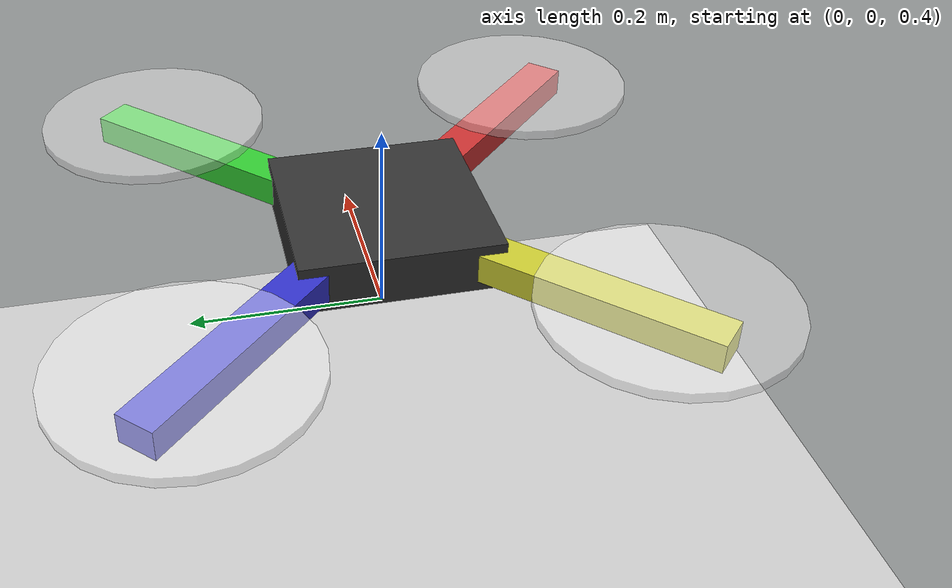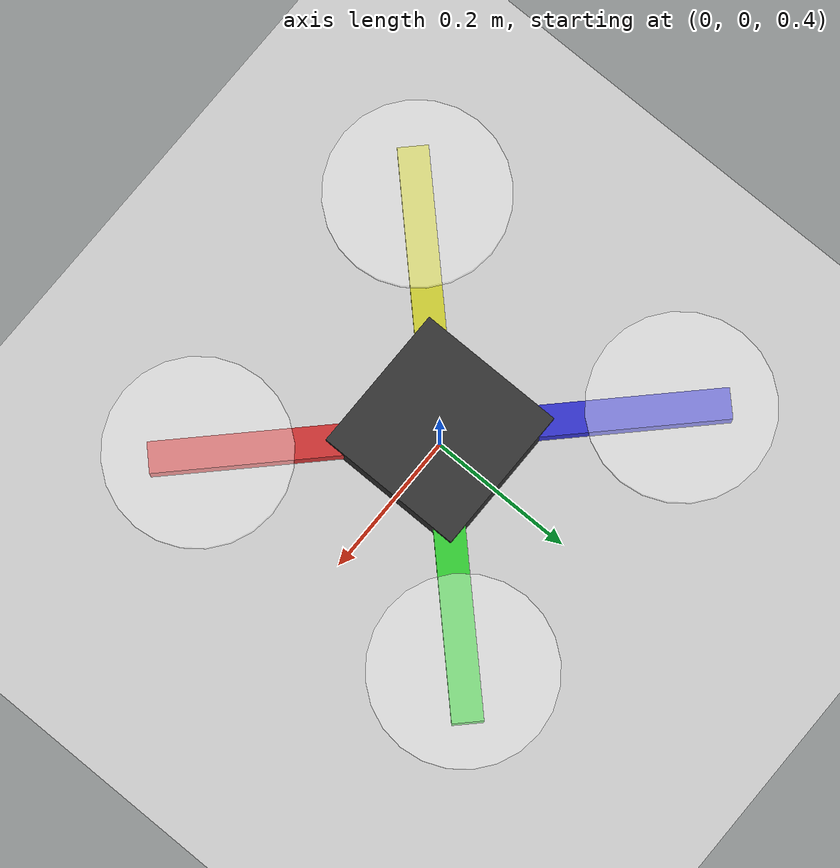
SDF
<sdf version='1.7'>
  <world name='default'>

    <spherical_coordinates>
      <surface_model>EARTH_WGS84</surface_model>
      <latitude_deg>34.7304</latitude_deg>
      <longitude_deg>-86.5861</longitude_deg>
      <elevation>200.0</elevation>
      <heading_deg>0</heading_deg>
    </spherical_coordinates>

    <plugin
      filename="gz-sim-physics-system"
      name="gz::sim::systems::Physics">
    </plugin>
    <plugin
      filename="gz-sim-scene-broadcaster-system"
      name="gz::sim::systems::SceneBroadcaster">
    </plugin>
    <plugin filename="gz-sim-apply-link-wrench-system"
        name="gz::sim::systems::ApplyLinkWrench">
    </plugin>
    <light name='sun' type='directional'>
      <cast_shadows>1</cast_shadows>
      <pose>0 0 10 0 -0 0</pose>
      <diffuse>0.8 0.8 0.8 1</diffuse>
      <specular>0.2 0.2 0.2 1</specular>
      <attenuation>
        <range>1000</range>
        <constant>0.9</constant>
        <linear>0.01</linear>
        <quadratic>0.001</quadratic>
      </attenuation>
      <direction>-0.5 0.1 -0.9</direction>
    </light>

    <model name='ground_plane'>
      <static>true</static>
      <link name='link'>
        <collision name='collision'>
          <geometry>
            <plane>
              <normal>0 0 1</normal>
              <size>100 100</size>
            </plane>
          </geometry>
        </collision>
        <visual name='visual'>
          <geometry>
            <plane>
              <normal>0 0 1</normal>
              <size>100 100</size>
            </plane>
          </geometry>
          <material>
            <ambient>0.8 0.8 0.8 1</ambient>
            <diffuse>0.8 0.8 0.8 1</diffuse>
            <specular>0.8 0.8 0.8 1</specular>
          </material>
        </visual>
      </link>
    </model>

    <include>
      <uri>model://quadcopter</uri>
      <pose>0 0 0.5 0 0 0</pose>
    </include>

  </world>
</sdf>

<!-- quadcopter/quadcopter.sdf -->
<sdf version='1.7'>
  <model name='quadcopter'>
    <link name='base_link'>
      <pose>0 0 0 0 0 0</pose>
      <inertial>
        <mass>1.5</mass>
        <inertia>
          <ixx>0.03</ixx>
          <ixy>0</ixy>
          <ixz>0</ixz>
          <iyy>0.03</iyy>
          <iyz>0</iyz>
          <izz>0.06</izz>
        </inertia>
      </inertial>

      <collision name='base_collision'>
        <geometry>
          <box>
            <size>0.4 0.4 0.05</size>
          </box>
        </geometry>
      </collision>

      <visual name='base_visual'>
        <geometry>
          <box>
            <size>0.2 0.2 0.05</size>
          </box>
        </geometry>
        <material>
          <ambient>0.1 0.1 0.1 1</ambient>
          <diffuse>0.2 0.2 0.2 1</diffuse>
          <specular>0.1 0.1 0.1 1</specular>
        </material>
      </visual>

      <visual name='arm_fr_visual'>
        <pose>0.15 -0.15 0 0 0 -0.785</pose>
        <geometry>
          <box>
            <size>0.3 0.04 0.03</size>
          </box>
        </geometry>
        <material>
          <ambient>0.8 0.2 0.2 1</ambient>
          <diffuse>0.8 0.2 0.2 1</diffuse>
        </material>
      </visual>

      <visual name='arm_fl_visual'>
        <pose>0.15 0.15 0 0 0 0.785</pose>
        <geometry>
          <box>
            <size>0.3 0.04 0.03</size>
          </box>
        </geometry>
        <material>
          <ambient>0.2 0.8 0.2 1</ambient>
          <diffuse>0.2 0.8 0.2 1</diffuse>
        </material>
      </visual>

      <visual name='arm_rl_visual'>
        <pose>-0.15 0.15 0 0 0 -0.785</pose>
        <geometry>
          <box>
            <size>0.3 0.04 0.03</size>
          </box>
        </geometry>
         <material>
          <ambient>0.2 0.2 0.8 1</ambient>
          <diffuse>0.2 0.2 0.8 1</diffuse>
        </material>
      </visual>

      <visual name='arm_rr_visual'>
        <pose>-0.15 -0.15 0 0 0 0.785</pose>
        <geometry>
          <box>
            <size>0.3 0.04 0.03</size>
          </box>
        </geometry>
        <material>
          <ambient>0.8 0.8 0.2 1</ambient>
          <diffuse>0.8 0.8 0.2 1</diffuse>
        </material>
      </visual>

      <sensor name="imu_sensor" type="imu">
        <always_on>1</always_on>
        <update_rate>100</update_rate>
        <visualize>true</visualize>
        <topic>imu</topic>
        <pose>0 0 0 0 0 0</pose>
        <imu>
          <angular_velocity>
            <x>
              <noise type='gaussian'>
                <stddev>0</stddev>
              </noise>
            </x>
            <y>
              <noise type='gaussian'>
                <stddev>0</stddev>
              </noise>
            </y>
            <z>
              <noise type='gaussian'>
                <stddev>0</stddev>
              </noise>
            </z>
          </angular_velocity>
          <linear_acceleration>
            <x>
              <noise type='gaussian'>
                <stddev>0</stddev>
              </noise>
            </x>
            <y>
              <noise type='gaussian'>
                <stddev>0</stddev>
              </noise>
            </y>
            <z>
              <noise type='gaussian'>
                <stddev>0</stddev>
              </noise>
            </z>
          </linear_acceleration>
        </imu>
      </sensor>

      <sensor name="magnetometer_sensor" type="magnetometer">
        <always_on>1</always_on>
        <update_rate>50</update_rate>
        <visualize>true</visualize>
        <topic>magnetometer</topic>
        <pose>0 0 0 0 0 0</pose>
        <magnetometer>
          <x>
            <noise type='gaussian'>
              <stddev>.003</stddev>
            </noise>
          </x>
          <y>
            <noise type='gaussian'>
              <stddev>.003</stddev>
            </noise>
          </y>
          <z>
            <noise type='gaussian'>
              <stddev>.003</stddev>
            </noise>
          </z>
        </magnetometer>
      </sensor>

      <sensor name="gps_sensor" type="navsat">
        <always_on>1</always_on>
        <update_rate>10</update_rate>
        <visualize>true</visualize>
        <topic>gps</topic>
        <pose>0 0 0 0 0 0</pose>
        <navsat>
          <position_sensing>
            <horizontal>
              <noise type='gaussian'>
                <stddev>0</stddev>
              </noise>
            </horizontal>
            <vertical>
              <noise type='gaussian'>
                <stddev>0</stddev>
              </noise>
            </vertical>
          </position_sensing>
        </navsat>
      </sensor>
    </link>

    <link name="prop_fr_link">
      <pose>0.212 -0.212 0.02 0 0 0</pose>
      <inertial><mass>0.01</mass><inertia><ixx>0.0001</ixx><iyy>0.0001</iyy><izz>0.0002</izz></inertia></inertial>
      <visual name='prop_fr_visual'>
        <geometry><cylinder><radius>0.12</radius><length>0.01</length></cylinder></geometry>
        <material><ambient>0.9 0.9 0.9 0.4</ambient><diffuse>1 1 1 0.4</diffuse></material>
      </visual>
    </link>
    <link name="prop_fl_link">
      <pose>0.212 0.212 0.02 0 0 0</pose>
      <inertial><mass>0.01</mass><inertia><ixx>0.0001</ixx><iyy>0.0001</iyy><izz>0.0002</izz></inertia></inertial>
      <visual name='prop_fl_visual'>
        <geometry><cylinder><radius>0.12</radius><length>0.01</length></cylinder></geometry>
        <material><ambient>0.9 0.9 0.9 0.4</ambient><diffuse>1 1 1 0.4</diffuse></material>
      </visual>
    </link>
    <link name="prop_rl_link">
      <pose>-0.212 0.212 0.02 0 0 0</pose>
      <inertial><mass>0.01</mass><inertia><ixx>0.0001</ixx><iyy>0.0001</iyy><izz>0.0002</izz></inertia></inertial>
      <visual name='prop_rl_visual'>
        <geometry><cylinder><radius>0.12</radius><length>0.01</length></cylinder></geometry>
        <material><ambient>0.9 0.9 0.9 0.4</ambient><diffuse>1 1 1 0.4</diffuse></material>
      </visual>
    </link>
    <link name="prop_rr_link">
      <pose>-0.212 -0.212 0.02 0 0 0</pose>
      <inertial><mass>0.01</mass><inertia><ixx>0.0001</ixx><iyy>0.0001</iyy><izz>0.0002</izz></inertia></inertial>
      <visual name='prop_rr_visual'>
        <geometry><cylinder><radius>0.12</radius><length>0.01</length></cylinder></geometry>
        <material><ambient>0.9 0.9 0.9 0.4</ambient><diffuse>1 1 1 0.4</diffuse></material>
      </visual>
    </link>

    <joint name="prop_fr_joint" type="revolute">
      <pose relative_to="prop_fr_link"/>
      <parent>base_link</parent>
      <child>prop_fr_link</child>
      <axis><xyz>0 0 1</xyz></axis>
    </joint>
    <joint name="prop_fl_joint" type="revolute">
      <pose relative_to="prop_fl_link"/>
      <parent>base_link</parent>
      <child>prop_fl_link</child>
      <axis><xyz>0 0 1</xyz></axis>
    </joint>
    <joint name="prop_rl_joint" type="revolute">
      <pose relative_to="prop_rl_link"/>
      <parent>base_link</parent>
      <child>prop_rl_link</child>
      <axis><xyz>0 0 1</xyz></axis>
    </joint>
    <joint name="prop_rr_joint" type="revolute">
      <pose relative_to="prop_rr_link"/>
      <parent>base_link</parent>
      <child>prop_rr_link</child>
      <axis><xyz>0 0 1</xyz></axis>
    </joint>

    <plugin filename="gz-sim-imu-system"
        name="gz::sim::systems::Imu">
    </plugin>

    <plugin filename="gz-sim-magnetometer-system"
      name="gz::sim::systems::Magnetometer">
    </plugin>

    <plugin filename="gz-sim-navsat-system"
      name="gz::sim::systems::NavSat">
    </plugin>

    <plugin
      filename="gz-sim-multicopter-motor-model-system"
      name="gz::sim::systems::MulticopterMotorModel">
      <robotNamespace>quadcopter</robotNamespace>
      <jointName>prop_fr_joint</jointName>
      <linkName>prop_fr_link</linkName>
      <turningDirection>ccw</turningDirection>
      <timeConstantUp>0.0125</timeConstantUp>
      <timeConstantDown>0.025</timeConstantDown>
      <maxRotVelocity>800.0</maxRotVelocity>
      <motorConstant>1.0258e-05</motorConstant>
      <momentConstant>0.016</momentConstant>
      <commandSubTopic>cmd_vel</commandSubTopic>
      <actuator_number>1</actuator_number>
      <rotorDragCoefficient>8.06428e-05</rotorDragCoefficient>
      <rollingMomentCoefficient>1e-06</rollingMomentCoefficient>
      <motorSpeedPubTopic>motor_speed/1</motorSpeedPubTopic>
      <rotorVelocitySlowdownSim>10</rotorVelocitySlowdownSim>
      <motorType>velocity</motorType>
    </plugin>
    <plugin
      filename="gz-sim-multicopter-motor-model-system"
      name="gz::sim::systems::MulticopterMotorModel">
      <robotNamespace>quadcopter</robotNamespace>
      <jointName>prop_fl_joint</jointName>
      <linkName>prop_fl_link</linkName>
      <turningDirection>cw</turningDirection>
      <timeConstantUp>0.0125</timeConstantUp>
      <timeConstantDown>0.025</timeConstantDown>
      <maxRotVelocity>800.0</maxRotVelocity>
      <motorConstant>1.0258e-05</motorConstant>
      <momentConstant>0.016</momentConstant>
      <commandSubTopic>cmd_vel</commandSubTopic>
      <actuator_number>3</actuator_number>
      <rotorDragCoefficient>8.06428e-05</rotorDragCoefficient>
      <rollingMomentCoefficient>1e-06</rollingMomentCoefficient>
      <motorSpeedPubTopic>motor_speed/3</motorSpeedPubTopic>
      <rotorVelocitySlowdownSim>10</rotorVelocitySlowdownSim>
      <motorType>velocity</motorType>
    </plugin>
    <plugin
      filename="gz-sim-multicopter-motor-model-system"
      name="gz::sim::systems::MulticopterMotorModel">
      <robotNamespace>quadcopter</robotNamespace>
      <jointName>prop_rl_joint</jointName>
      <linkName>prop_rl_link</linkName>
      <turningDirection>ccw</turningDirection>
      <timeConstantUp>0.0125</timeConstantUp>
      <timeConstantDown>0.025</timeConstantDown>
      <maxRotVelocity>800.0</maxRotVelocity>
      <motorConstant>1.0258e-05</motorConstant>
      <momentConstant>0.016</momentConstant>
      <commandSubTopic>cmd_vel</commandSubTopic>
      <actuator_number>2</actuator_number>
      <rotorDragCoefficient>8.06428e-05</rotorDragCoefficient>
      <rollingMomentCoefficient>1e-06</rollingMomentCoefficient>
      <motorSpeedPubTopic>motor_speed/2</motorSpeedPubTopic>
      <rotorVelocitySlowdownSim>10</rotorVelocitySlowdownSim>
      <motorType>velocity</motorType>
    </plugin>
    <plugin
      filename="gz-sim-multicopter-motor-model-system"
      name="gz::sim::systems::MulticopterMotorModel">
      <robotNamespace>quadcopter</robotNamespace>
      <jointName>prop_rr_joint</jointName>
      <linkName>prop_rr_link</linkName>
      <turningDirection>cw</turningDirection>
      <timeConstantUp>0.0125</timeConstantUp>
      <timeConstantDown>0.025</timeConstantDown>
      <maxRotVelocity>800.0</maxRotVelocity>
      <motorConstant>1.0258e-05</motorConstant>
      <momentConstant>0.016</momentConstant>
      <commandSubTopic>cmd_vel</commandSubTopic>
      <actuator_number>0</actuator_number>
      <rotorDragCoefficient>8.06428e-05</rotorDragCoefficient>
      <rollingMomentCoefficient>1e-06</rollingMomentCoefficient>
      <motorSpeedPubTopic>motor_speed/0</motorSpeedPubTopic>
      <rotorVelocitySlowdownSim>10</rotorVelocitySlowdownSim>
      <motorType>velocity</motorType>
    </plugin>
    <plugin
        filename="gz-sim-multicopter-control-system"
        name="gz::sim::systems::MulticopterVelocityControl">
        <robotNamespace>quadcopter</robotNamespace>
        <commandSubTopic>vel_cmd</commandSubTopic>
        <enableSubTopic>enable</enableSubTopic>
        <comLinkName>base_link</comLinkName>
        <velocityGain>2.7 2.7 2.7</velocityGain>
        <attitudeGain>2 3 0.15</attitudeGain>
        <angularRateGain>0.4 0.52 0.18</angularRateGain>
        <maximumLinearAcceleration>2 2 2</maximumLinearAcceleration>

        <rotorConfiguration>
          <rotor>
            <jointName>prop_rr_joint</jointName>
            <forceConstant>1.0258e-05</forceConstant>
            <momentConstant>0.016</momentConstant>
            <direction>-1</direction>
          </rotor>
          <rotor>
            <jointName>prop_fr_joint</jointName>
            <forceConstant>1.0258e-05</forceConstant>
            <momentConstant>0.016</momentConstant>
            <direction>1</direction>
          </rotor>
          <rotor>
            <jointName>prop_rl_joint</jointName>
            <forceConstant>1.0258e-05</forceConstant>
            <momentConstant>0.016</momentConstant>
            <direction>1</direction>
          </rotor>
          <rotor>
            <jointName>prop_fl_joint</jointName>
            <forceConstant>1.0258e-05</forceConstant>
            <momentConstant>0.016</momentConstant>
            <direction>-1</direction>
          </rotor>
        </rotorConfiguration>
      </plugin>
  </model>
</sdf>
